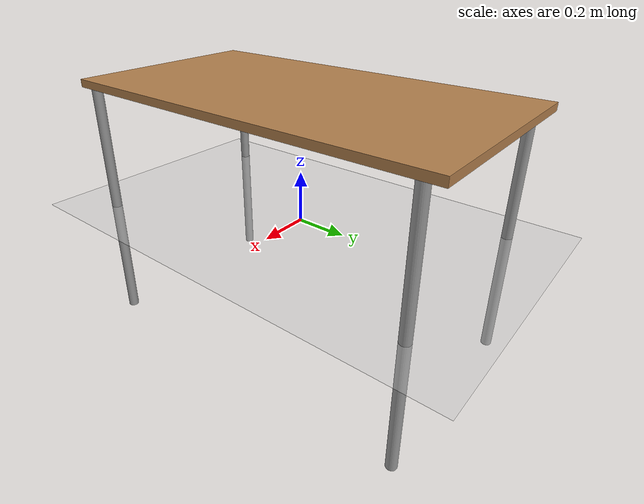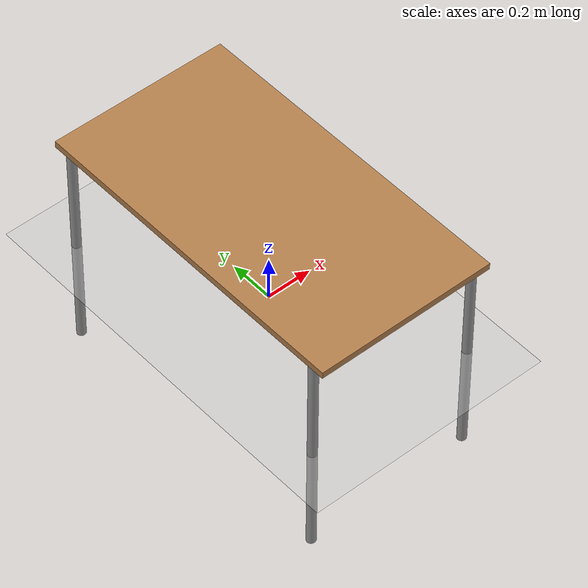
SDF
<?xml version="1.0" ?>
<sdf version="1.4">
  <!-- We use a custom world for the rrbot so that the camera angle is launched correctly -->

  <world name="default">
    <include>
      <uri>model://ground_plane</uri>
    </include>

    <!-- Global light source -->
    <include>
      <uri>model://sun</uri>
    </include>

    <include>
        <uri>model://table</uri>
        <pose>0 0 -0.5 0 0 1.57</pose>
    </include>

    <plugin name="gazebo_ros_state" filename="libgazebo_ros_state.so">
    	<ros>
    		<namespace>/demo</namespace>
        	<argument>model_states:=model_states_demo</argument>
        </ros>
        <update_rate>1.0</update_rate>
    </plugin>

  </world>
</sdf>

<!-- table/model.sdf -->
<sdf version="1.5">
  <model name="table">
    <static>true</static>
    <link name="link">
      <collision name="surface">
        <pose>0 0 1.0 0 0 0</pose>
        <geometry>
          <box>
            <size>1.5 0.8 0.03</size>
          </box>
        </geometry>
        <surface>
          <friction>
            <ode>
              <mu>0.6</mu>
              <mu2>0.6</mu2>
            </ode>
          </friction>
        </surface>
      </collision>
      <visual name="visual1">
        <pose>0 0 1.0 0 0 0</pose>
        <geometry>
          <box>
            <size>1.5 0.8 0.03</size>
          </box>
        </geometry>
        <material>
          <script>
            <uri>model://media/materials/scripts/gazebo.material</uri>
            <name>Gazebo/Wood</name>
          </script>
        </material>
      </visual>
      <collision name="front_left_leg">
        <pose>0.68 0.38 0.5 0 0 0</pose>
        <geometry>
          <cylinder>
            <radius>0.02</radius>
            <length>1.0</length>
          </cylinder>
        </geometry>
      </collision>
      <visual name="front_left_leg">
        <pose>0.68 0.38 0.5 0 0 0</pose>
        <geometry>
          <cylinder>
            <radius>0.02</radius>
            <length>1.0</length>
          </cylinder>
        </geometry>
        <material>
          <script>
            <uri>model://media/materials/scripts/gazebo.material</uri>
            <name>Gazebo/Grey</name>
          </script>
        </material>
      </visual>
      <collision name="front_right_leg">
        <pose>0.68 -0.38 0.5 0 0 0</pose>
        <geometry>
          <cylinder>
            <radius>0.02</radius>
            <length>1.0</length>
          </cylinder>
        </geometry>
      </collision>
      <visual name="front_right_leg">
        <pose>0.68 -0.38 0.5 0 0 0</pose>
        <geometry>
          <cylinder>
            <radius>0.02</radius>
            <length>1.0</length>
          </cylinder>
        </geometry>
        <material>
          <script>
            <uri>model://media/materials/scripts/gazebo.material</uri>
            <name>Gazebo/Grey</name>
          </script>
        </material>
      </visual>
      <collision name="back_right_leg">
        <pose>-0.68 -0.38 0.5 0 0 0</pose>
        <geometry>
          <cylinder>
            <radius>0.02</radius>
            <length>1.0</length>
          </cylinder>
        </geometry>
      </collision>
      <visual name="back_right_leg">
        <pose>-0.68 -0.38 0.5 0 0 0</pose>
        <geometry>
          <cylinder>
            <radius>0.02</radius>
            <length>1.0</length>
          </cylinder>
        </geometry>
        <material>
          <script>
            <uri>model://media/materials/scripts/gazebo.material</uri>
            <name>Gazebo/Grey</name>
          </script>
        </material>
      </visual>
      <collision name="back_left_leg">
        <pose>-0.68 0.38 0.5 0 0 0</pose>
        <geometry>
          <cylinder>
            <radius>0.02</radius>
            <length>1.0</length>
          </cylinder>
        </geometry>
      </collision>
      <visual name="back_left_leg">
        <pose>-0.68 0.38 0.5 0 0 0</pose>
        <geometry>
          <cylinder>
            <radius>0.02</radius>
            <length>1.0</length>
          </cylinder>
        </geometry>
        <material>
          <script>
            <uri>model://media/materials/scripts/gazebo.material</uri>
            <name>Gazebo/Grey</name>
          </script>
        </material>
      </visual>
    </link>
  </model>
</sdf>
